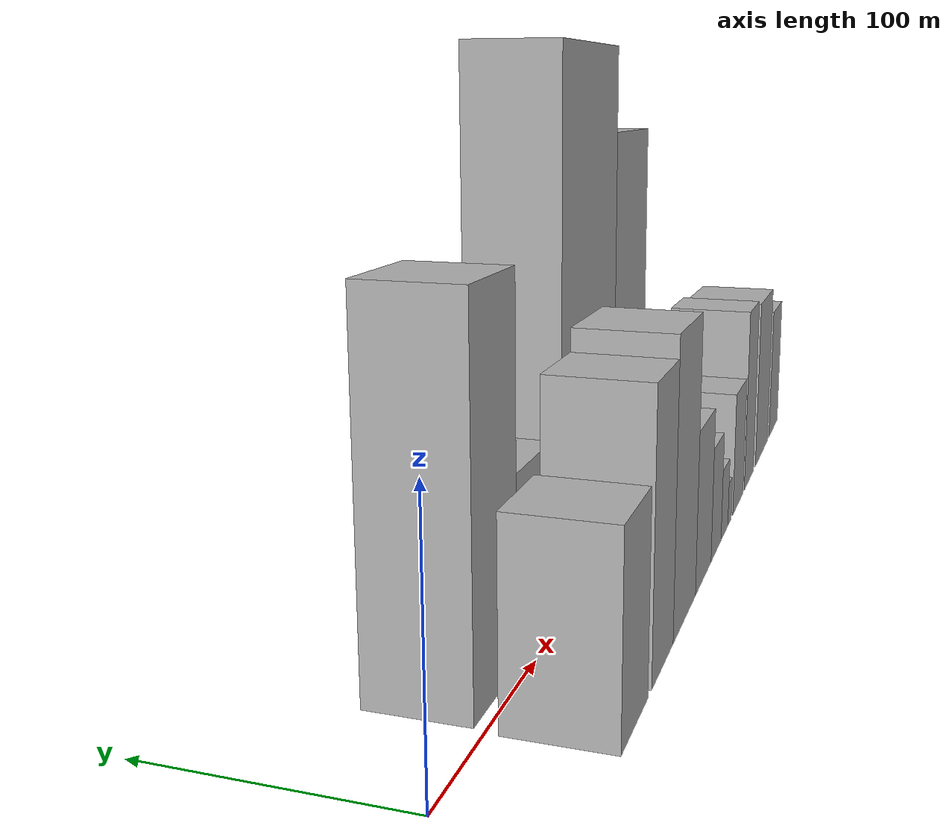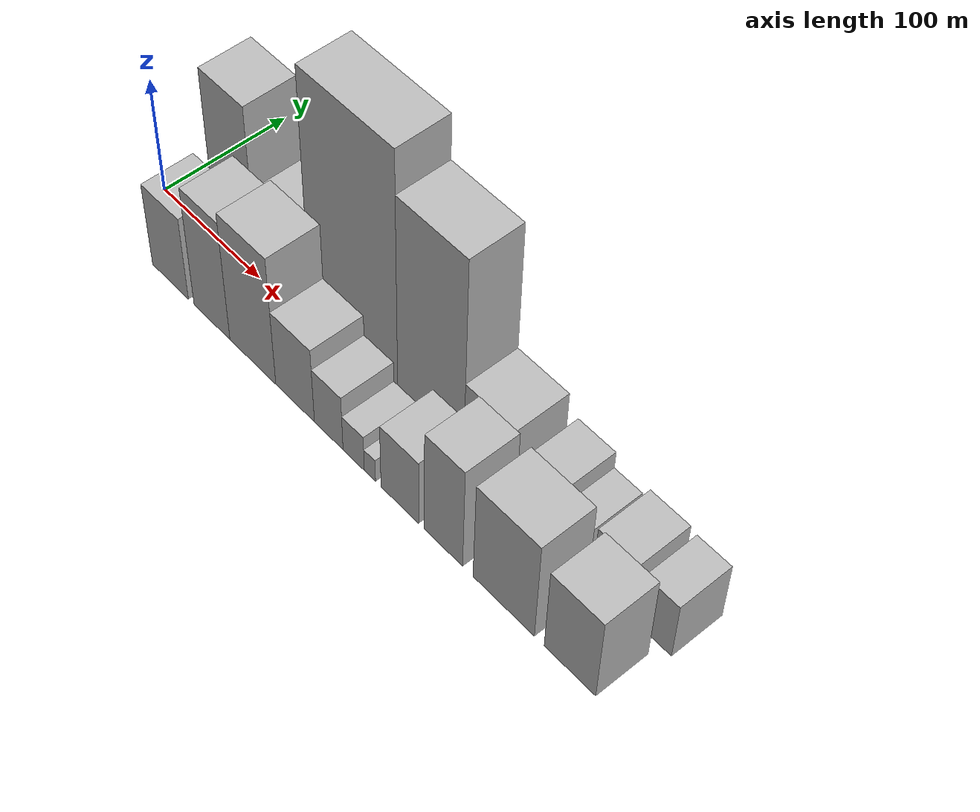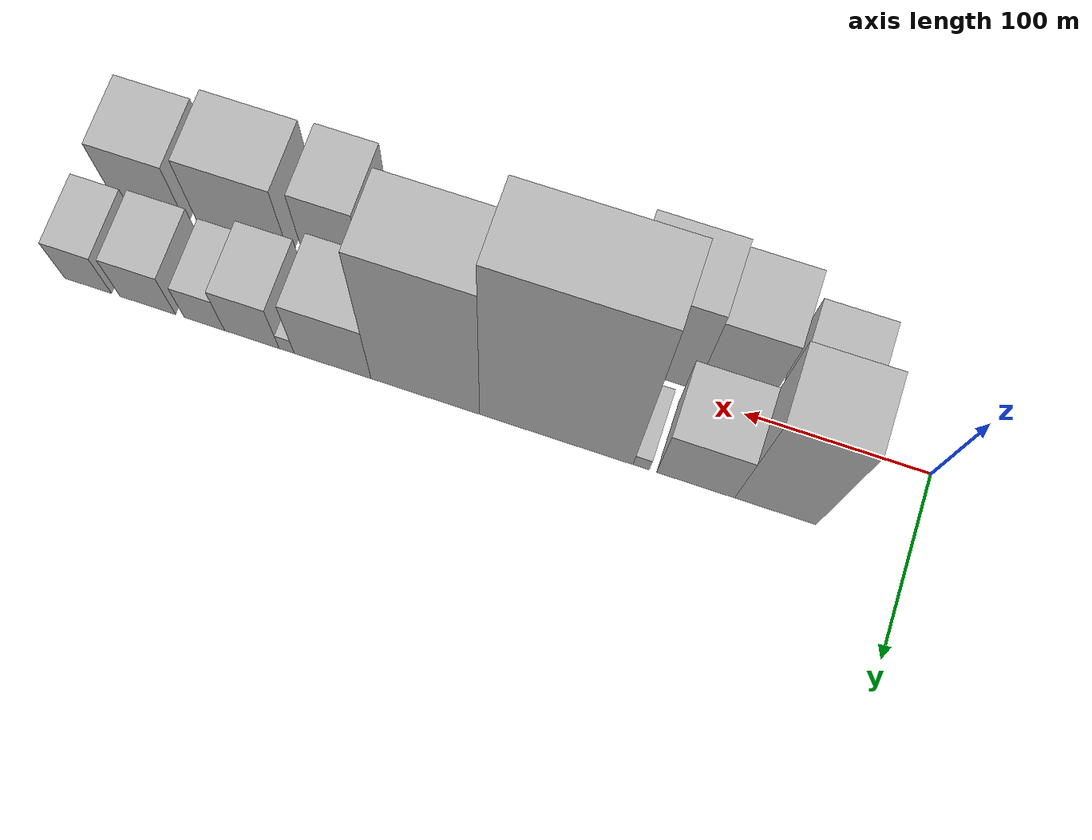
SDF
<sdf version="1.6">
 <world name="default">
  <scene>
   <sky><clouds><speed>12</speed></clouds></sky>
   <ambient>0.4 0.4 0.4 1</ambient>
   <background>0.7 0.7 0.7 1</background>
   <shadows>1</shadows>
  </scene>
  <gravity>0 0 -9.8066</gravity>
  <magnetic_field>6e-06 2.3e-05 -4.2e-05</magnetic_field>
  <physics default="0" name="default_physics" type="ode">
   <ode>
    <solver>
     <type>quick</type>
     <iters>10</iters>
     <sor>1.0</sor>
     <use_dynamic_moi_rescaling>0</use_dynamic_moi_rescaling>
    </solver>
    <constraints>
     <cfm>0</cfm>
     <erp>0.2</erp>
     <contact_max_correcting_vel>100</contact_max_correcting_vel>
     <contact_surface_layer>0.001</contact_surface_layer>
    </constraints>
   </ode>
   <max_step_size>0.004</max_step_size>
   <real_time_factor>1</real_time_factor>
   <real_time_update_rate>250</real_time_update_rate>
  </physics>
  <light name="sun" type="directional">
   <pose>0 0 10 0 0 0</pose>
   <diffuse>0.8 0.8 0.8 1</diffuse>
   <specular>0.2 0.2 0.2 1</specular>
   <attenuation>
    <range>1000</range>
    <constant>0.9</constant>
    <linear>0.01</linear>
    <quadratic>0.001</quadratic>
   </attenuation>
   <direction>-0.5 0.1 -0.9</direction>
  </light>
  <model name="building_1">
   <static>1</static>
   <pose>70.6350 24.5000 0 0.000000 0.000000 1.570796</pose>
   <link name="link">
    <pose>0 0 72.00 0 0 0</pose>
    <collision name="collision"><geometry><box><size>40.0000 43.2700 144.0000</size></box></geometry></collision>
    <visual name="visual">
     <cast_shadows>0</cast_shadows>
     <geometry><box><size>40.0000 43.2700 144.0000</size></box></geometry>
     <material>
      <script>
       <uri>model://HANNAS_wall/materials/scripts</uri>
       <uri>model://HANNAS_wall/materials/textures</uri>
       <name>vrc/HANNAS_wall</name>
      </script>
     </material>
    </visual>
   </link>
  </model>
  <model name="building_2">
   <static>1</static>
   <pose>113.1995 24.5000 0 0.000000 0.000000 1.570796</pose>
   <link name="link">
    <pose>0 0 36.00 0 0 0</pose>
    <collision name="collision"><geometry><box><size>40.0000 41.8589 72.0000</size></box></geometry></collision>
    <visual name="visual">
     <cast_shadows>0</cast_shadows>
     <geometry><box><size>40.0000 41.8589 72.0000</size></box></geometry>
     <material>
      <script>
       <uri>model://HANNAS_wall/materials/scripts</uri>
       <uri>model://HANNAS_wall/materials/textures</uri>
       <name>vrc/HANNAS_wall</name>
      </script>
     </material>
    </visual>
   </link>
  </model>
  <model name="building_3">
   <static>1</static>
   <pose>142.5076 24.5000 0 0.000000 0.000000 1.570796</pose>
   <link name="link">
    <pose>0 0 9.00 0 0 0</pose>
    <collision name="collision"><geometry><box><size>40.0000 8.7572 18.0000</size></box></geometry></collision>
    <visual name="visual">
     <cast_shadows>0</cast_shadows>
     <geometry><box><size>40.0000 8.7572 18.0000</size></box></geometry>
     <material>
      <script>
       <uri>model://HANNAS_wall/materials/scripts</uri>
       <uri>model://HANNAS_wall/materials/textures</uri>
       <name>vrc/HANNAS_wall</name>
      </script>
     </material>
    </visual>
   </link>
  </model>
  <model name="building_4">
   <static>1</static>
   <pose>188.7132 24.5000 0 0.000000 0.000000 1.570796</pose>
   <link name="link">
    <pose>0 0 109.50 0 0 0</pose>
    <collision name="collision"><geometry><box><size>40.0000 83.6542 219.0000</size></box></geometry></collision>
    <visual name="visual">
     <cast_shadows>0</cast_shadows>
     <geometry><box><size>40.0000 83.6542 219.0000</size></box></geometry>
     <material>
      <script>
       <uri>model://HANNAS_wall/materials/scripts</uri>
       <uri>model://HANNAS_wall/materials/textures</uri>
       <name>vrc/HANNAS_wall</name>
      </script>
     </material>
    </visual>
   </link>
  </model>
  <model name="building_5">
   <static>1</static>
   <pose>260.6108 24.5000 0 0.000000 0.000000 1.570796</pose>
   <link name="link">
    <pose>0 0 91.50 0 0 0</pose>
    <collision name="collision"><geometry><box><size>40.0000 60.1410 183.0000</size></box></geometry></collision>
    <visual name="visual">
     <cast_shadows>0</cast_shadows>
     <geometry><box><size>40.0000 60.1410 183.0000</size></box></geometry>
     <material>
      <script>
       <uri>model://HANNAS_wall/materials/scripts</uri>
       <uri>model://HANNAS_wall/materials/textures</uri>
       <name>vrc/HANNAS_wall</name>
      </script>
     </material>
    </visual>
   </link>
  </model>
  <model name="building_6">
   <static>1</static>
   <pose>312.2208 24.5000 0 0.000000 0.000000 1.570796</pose>
   <link name="link">
    <pose>0 0 37.50 0 0 0</pose>
    <collision name="collision"><geometry><box><size>40.0000 43.0791 75.0000</size></box></geometry></collision>
    <visual name="visual">
     <cast_shadows>0</cast_shadows>
     <geometry><box><size>40.0000 43.0791 75.0000</size></box></geometry>
     <material>
      <script>
       <uri>model://HANNAS_wall/materials/scripts</uri>
       <uri>model://HANNAS_wall/materials/textures</uri>
       <name>vrc/HANNAS_wall</name>
      </script>
     </material>
    </visual>
   </link>
  </model>
  <model name="building_7">
   <static>1</static>
   <pose>337.9820 24.5000 0 0.000000 0.000000 1.570796</pose>
   <link name="link">
    <pose>0 0 10.50 0 0 0</pose>
    <collision name="collision"><geometry><box><size>40.0000 8.4431 21.0000</size></box></geometry></collision>
    <visual name="visual">
     <cast_shadows>0</cast_shadows>
     <geometry><box><size>40.0000 8.4431 21.0000</size></box></geometry>
     <material>
      <script>
       <uri>model://HANNAS_wall/materials/scripts</uri>
       <uri>model://HANNAS_wall/materials/textures</uri>
       <name>vrc/HANNAS_wall</name>
      </script>
     </material>
    </visual>
   </link>
  </model>
  <model name="building_8">
   <static>1</static>
   <pose>357.6203 24.5000 0 0.000000 0.000000 1.570796</pose>
   <link name="link">
    <pose>0 0 30.00 0 0 0</pose>
    <collision name="collision"><geometry><box><size>40.0000 30.8336 60.0000</size></box></geometry></collision>
    <visual name="visual">
     <cast_shadows>0</cast_shadows>
     <geometry><box><size>40.0000 30.8336 60.0000</size></box></geometry>
     <material>
      <script>
       <uri>model://HANNAS_wall/materials/scripts</uri>
       <uri>model://HANNAS_wall/materials/textures</uri>
       <name>vrc/HANNAS_wall</name>
      </script>
     </material>
    </visual>
   </link>
  </model>
  <model name="building_9">
   <static>1</static>
   <pose>384.5232 24.5000 0 0.000000 0.000000 1.570796</pose>
   <link name="link">
    <pose>0 0 22.50 0 0 0</pose>
    <collision name="collision"><geometry><box><size>40.0000 22.9722 45.0000</size></box></geometry></collision>
    <visual name="visual">
     <cast_shadows>0</cast_shadows>
     <geometry><box><size>40.0000 22.9722 45.0000</size></box></geometry>
     <material>
      <script>
       <uri>model://HANNAS_wall/materials/scripts</uri>
       <uri>model://HANNAS_wall/materials/textures</uri>
       <name>vrc/HANNAS_wall</name>
      </script>
     </material>
    </visual>
   </link>
  </model>
  <model name="building_10">
   <static>1</static>
   <pose>416.8978 24.5000 0 0.000000 0.000000 1.570796</pose>
   <link name="link">
    <pose>0 0 27.00 0 0 0</pose>
    <collision name="collision"><geometry><box><size>40.0000 31.7770 54.0000</size></box></geometry></collision>
    <visual name="visual">
     <cast_shadows>0</cast_shadows>
     <geometry><box><size>40.0000 31.7770 54.0000</size></box></geometry>
     <material>
      <script>
       <uri>model://HANNAS_wall/materials/scripts</uri>
       <uri>model://HANNAS_wall/materials/textures</uri>
       <name>vrc/HANNAS_wall</name>
      </script>
     </material>
    </visual>
   </link>
  </model>
  <model name="building_11">
   <static>1</static>
   <pose>451.2802 24.5000 0 0.000000 0.000000 1.570796</pose>
   <link name="link">
    <pose>0 0 25.50 0 0 0</pose>
    <collision name="collision"><geometry><box><size>40.0000 26.9877 51.0000</size></box></geometry></collision>
    <visual name="visual">
     <cast_shadows>0</cast_shadows>
     <geometry><box><size>40.0000 26.9877 51.0000</size></box></geometry>
     <material>
      <script>
       <uri>model://HANNAS_wall/materials/scripts</uri>
       <uri>model://HANNAS_wall/materials/textures</uri>
       <name>vrc/HANNAS_wall</name>
      </script>
     </material>
    </visual>
   </link>
  </model>
  <model name="building_12">
   <static>1</static>
   <pose>65.9126 -24.5000 0 0.000000 0.000000 1.570796</pose>
   <link name="link">
    <pose>0 0 37.50 0 0 0</pose>
    <collision name="collision"><geometry><box><size>40.0000 37.8252 75.0000</size></box></geometry></collision>
    <visual name="visual">
     <cast_shadows>0</cast_shadows>
     <geometry><box><size>40.0000 37.8252 75.0000</size></box></geometry>
     <material>
      <script>
       <uri>model://HANNAS_wall/materials/scripts</uri>
       <uri>model://HANNAS_wall/materials/textures</uri>
       <name>vrc/HANNAS_wall</name>
      </script>
     </material>
    </visual>
   </link>
  </model>
  <model name="building_13">
   <static>1</static>
   <pose>109.2556 -24.5000 0 0.000000 0.000000 1.570796</pose>
   <link name="link">
    <pose>0 0 54.00 0 0 0</pose>
    <collision name="collision"><geometry><box><size>40.0000 36.8608 108.0000</size></box></geometry></collision>
    <visual name="visual">
     <cast_shadows>0</cast_shadows>
     <geometry><box><size>40.0000 36.8608 108.0000</size></box></geometry>
     <material>
      <script>
       <uri>model://HANNAS_wall/materials/scripts</uri>
       <uri>model://HANNAS_wall/materials/textures</uri>
       <name>vrc/HANNAS_wall</name>
      </script>
     </material>
    </visual>
   </link>
  </model>
  <model name="building_14">
   <static>1</static>
   <pose>150.5783 -24.5000 0 0.000000 0.000000 1.570796</pose>
   <link name="link">
    <pose>0 0 58.50 0 0 0</pose>
    <collision name="collision"><geometry><box><size>40.0000 45.7846 117.0000</size></box></geometry></collision>
    <visual name="visual">
     <cast_shadows>0</cast_shadows>
     <geometry><box><size>40.0000 45.7846 117.0000</size></box></geometry>
     <material>
      <script>
       <uri>model://HANNAS_wall/materials/scripts</uri>
       <uri>model://HANNAS_wall/materials/textures</uri>
       <name>vrc/HANNAS_wall</name>
      </script>
     </material>
    </visual>
   </link>
  </model>
  <model name="building_15">
   <static>1</static>
   <pose>192.1910 -24.5000 0 0.000000 0.000000 1.570796</pose>
   <link name="link">
    <pose>0 0 34.50 0 0 0</pose>
    <collision name="collision"><geometry><box><size>40.0000 37.4408 69.0000</size></box></geometry></collision>
    <visual name="visual">
     <cast_shadows>0</cast_shadows>
     <geometry><box><size>40.0000 37.4408 69.0000</size></box></geometry>
     <material>
      <script>
       <uri>model://HANNAS_wall/materials/scripts</uri>
       <uri>model://HANNAS_wall/materials/textures</uri>
       <name>vrc/HANNAS_wall</name>
      </script>
     </material>
    </visual>
   </link>
  </model>
  <model name="building_16">
   <static>1</static>
   <pose>224.4524 -24.5000 0 0.000000 0.000000 1.570796</pose>
   <link name="link">
    <pose>0 0 25.50 0 0 0</pose>
    <collision name="collision"><geometry><box><size>40.0000 27.0820 51.0000</size></box></geometry></collision>
    <visual name="visual">
     <cast_shadows>0</cast_shadows>
     <geometry><box><size>40.0000 27.0820 51.0000</size></box></geometry>
     <material>
      <script>
       <uri>model://HANNAS_wall/materials/scripts</uri>
       <uri>model://HANNAS_wall/materials/textures</uri>
       <name>vrc/HANNAS_wall</name>
      </script>
     </material>
    </visual>
   </link>
  </model>
  <model name="building_17">
   <static>1</static>
   <pose>247.8630 -24.5000 0 0.000000 0.000000 1.570796</pose>
   <link name="link">
    <pose>0 0 16.50 0 0 0</pose>
    <collision name="collision"><geometry><box><size>40.0000 19.7391 33.0000</size></box></geometry></collision>
    <visual name="visual">
     <cast_shadows>0</cast_shadows>
     <geometry><box><size>40.0000 19.7391 33.0000</size></box></geometry>
     <material>
      <script>
       <uri>model://HANNAS_wall/materials/scripts</uri>
       <uri>model://HANNAS_wall/materials/textures</uri>
       <name>vrc/HANNAS_wall</name>
      </script>
     </material>
    </visual>
   </link>
  </model>
  <model name="building_18">
   <static>1</static>
   <pose>262.8890 -24.5000 0 0.000000 0.000000 1.570796</pose>
   <link name="link">
    <pose>0 0 10.50 0 0 0</pose>
    <collision name="collision"><geometry><box><size>40.0000 10.3130 21.0000</size></box></geometry></collision>
    <visual name="visual">
     <cast_shadows>0</cast_shadows>
     <geometry><box><size>40.0000 10.3130 21.0000</size></box></geometry>
     <material>
      <script>
       <uri>model://HANNAS_wall/materials/scripts</uri>
       <uri>model://HANNAS_wall/materials/textures</uri>
       <name>vrc/HANNAS_wall</name>
      </script>
     </material>
    </visual>
   </link>
  </model>
  <model name="building_19">
   <static>1</static>
   <pose>289.9826 -24.5000 0 0.000000 0.000000 1.570796</pose>
   <link name="link">
    <pose>0 0 30.00 0 0 0</pose>
    <collision name="collision"><geometry><box><size>40.0000 33.8741 60.0000</size></box></geometry></collision>
    <visual name="visual">
     <cast_shadows>0</cast_shadows>
     <geometry><box><size>40.0000 33.8741 60.0000</size></box></geometry>
     <material>
      <script>
       <uri>model://HANNAS_wall/materials/scripts</uri>
       <uri>model://HANNAS_wall/materials/textures</uri>
       <name>vrc/HANNAS_wall</name>
      </script>
     </material>
    </visual>
   </link>
  </model>
  <model name="building_20">
   <static>1</static>
   <pose>328.6677 -24.5000 0 0.000000 0.000000 1.570796</pose>
   <link name="link">
    <pose>0 0 46.50 0 0 0</pose>
    <collision name="collision"><geometry><box><size>40.0000 33.4961 93.0000</size></box></geometry></collision>
    <visual name="visual">
     <cast_shadows>0</cast_shadows>
     <geometry><box><size>40.0000 33.4961 93.0000</size></box></geometry>
     <material>
      <script>
       <uri>model://HANNAS_wall/materials/scripts</uri>
       <uri>model://HANNAS_wall/materials/textures</uri>
       <name>vrc/HANNAS_wall</name>
      </script>
     </material>
    </visual>
   </link>
  </model>
  <model name="building_21">
   <static>1</static>
   <pose>380.1868 -24.5000 0 0.000000 0.000000 1.570796</pose>
   <link name="link">
    <pose>0 0 45.00 0 0 0</pose>
    <collision name="collision"><geometry><box><size>40.0000 51.5421 90.0000</size></box></geometry></collision>
    <visual name="visual">
     <cast_shadows>0</cast_shadows>
     <geometry><box><size>40.0000 51.5421 90.0000</size></box></geometry>
     <material>
      <script>
       <uri>model://HANNAS_wall/materials/scripts</uri>
       <uri>model://HANNAS_wall/materials/textures</uri>
       <name>vrc/HANNAS_wall</name>
      </script>
     </material>
    </visual>
   </link>
  </model>
  <model name="building_22">
   <static>1</static>
   <pose>434.7062 -24.5000 0 0.000000 0.000000 1.570796</pose>
   <link name="link">
    <pose>0 0 37.50 0 0 0</pose>
    <collision name="collision"><geometry><box><size>40.0000 41.4968 75.0000</size></box></geometry></collision>
    <visual name="visual">
     <cast_shadows>0</cast_shadows>
     <geometry><box><size>40.0000 41.4968 75.0000</size></box></geometry>
     <material>
      <script>
       <uri>model://HANNAS_wall/materials/scripts</uri>
       <uri>model://HANNAS_wall/materials/textures</uri>
       <name>vrc/HANNAS_wall</name>
      </script>
     </material>
    </visual>
   </link>
  </model>
 </world>
</sdf>
